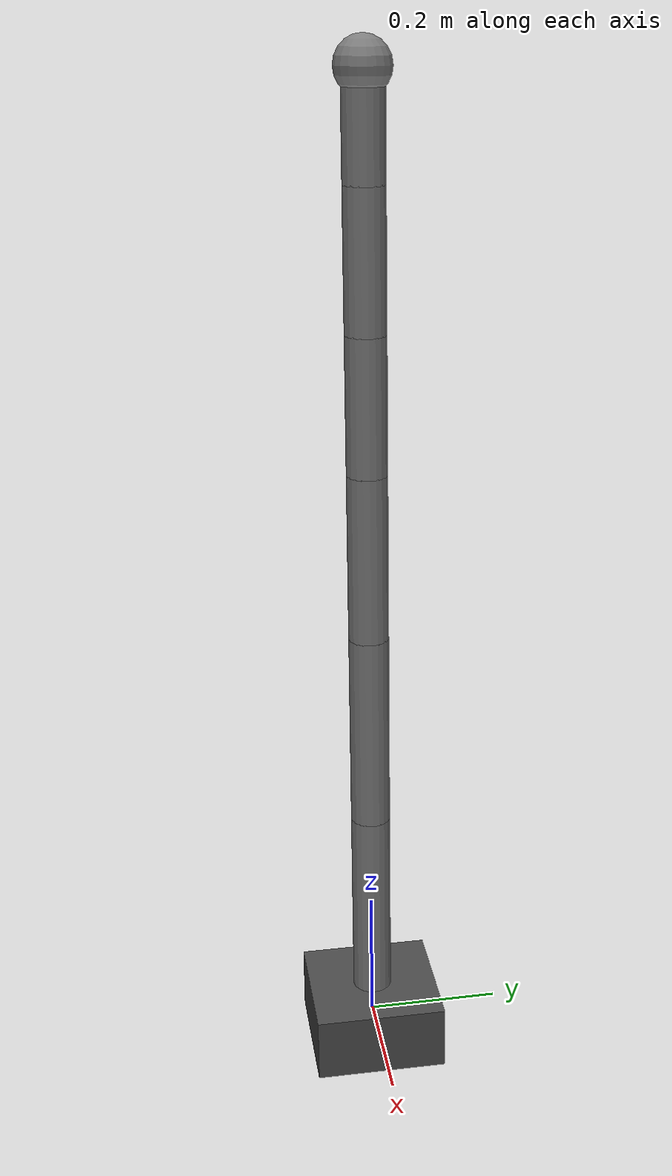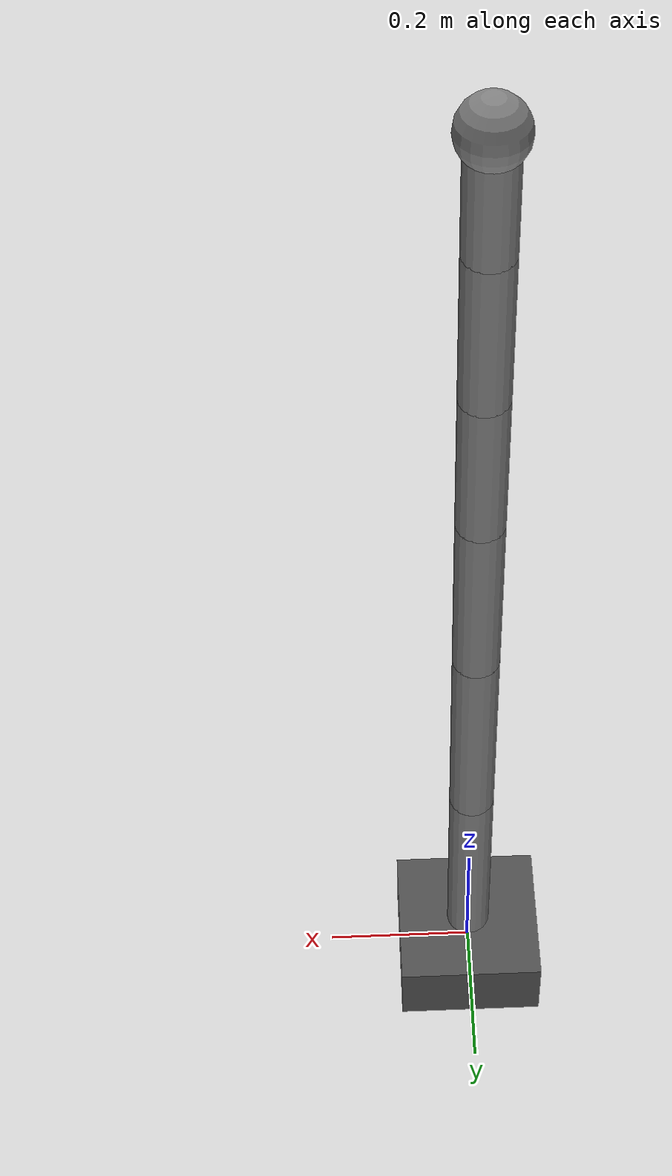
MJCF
<mujoco model="simple_arm">
    <compiler angle="radian"/>
    <option timestep="0.002" gravity="0 0 -9.81"/>

    <worldbody>
        <light pos="0 0 2"/>

        <body name="base" pos="0 0 0">
            <geom type="box" size="0.1 0.1 0.05" rgba="0.3 0.3 0.3 1"/>

            <!-- 7-DoF arm -->
            <body name="link1" pos="0 0 0.05">
                <joint name="j1" type="hinge" axis="0 0 1"/>
                <geom type="capsule" fromto="0 0 0 0 0 0.3" size="0.03"/>

                <body name="link2" pos="0 0 0.3">
                    <joint name="j2" type="hinge" axis="0 1 0"/>
                    <geom type="capsule" fromto="0 0 0 0 0 0.3" size="0.03"/>

                    <body name="link3" pos="0 0 0.3">
                        <joint name="j3" type="hinge" axis="0 1 0"/>
                        <geom type="capsule" fromto="0 0 0 0 0 0.25" size="0.03"/>

                        <body name="link4" pos="0 0 0.25">
                            <joint name="j4" type="hinge" axis="1 0 0"/>
                            <geom type="capsule" fromto="0 0 0 0 0 0.2" size="0.03"/>

                            <body name="link5" pos="0 0 0.2">
                                <joint name="j5" type="hinge" axis="0 1 0"/>
                                <geom type="capsule" fromto="0 0 0 0 0 0.2" size="0.03"/>

                                <body name="link6" pos="0 0 0.2">
                                    <joint name="j6" type="hinge" axis="1 0 0"/>
                                    <geom type="capsule" fromto="0 0 0 0 0 0.15" size="0.03"/>

                                    <body name="link7" pos="0 0 0.15">
                                        <joint name="j7" type="hinge" axis="0 1 0"/>
                                        <geom type="sphere" size="0.04"/>
                                    </body>
                                </body>
                            </body>
                        </body>
                    </body>
                </body>
            </body>
        </body>
    </worldbody>

    <actuator>
        <position joint="j1" kp="50"/>
        <position joint="j2" kp="50"/>
        <position joint="j3" kp="50"/>
        <position joint="j4" kp="50"/>
        <position joint="j5" kp="50"/>
        <position joint="j6" kp="50"/>
        <position joint="j7" kp="50"/>
    </actuator>
</mujoco>
